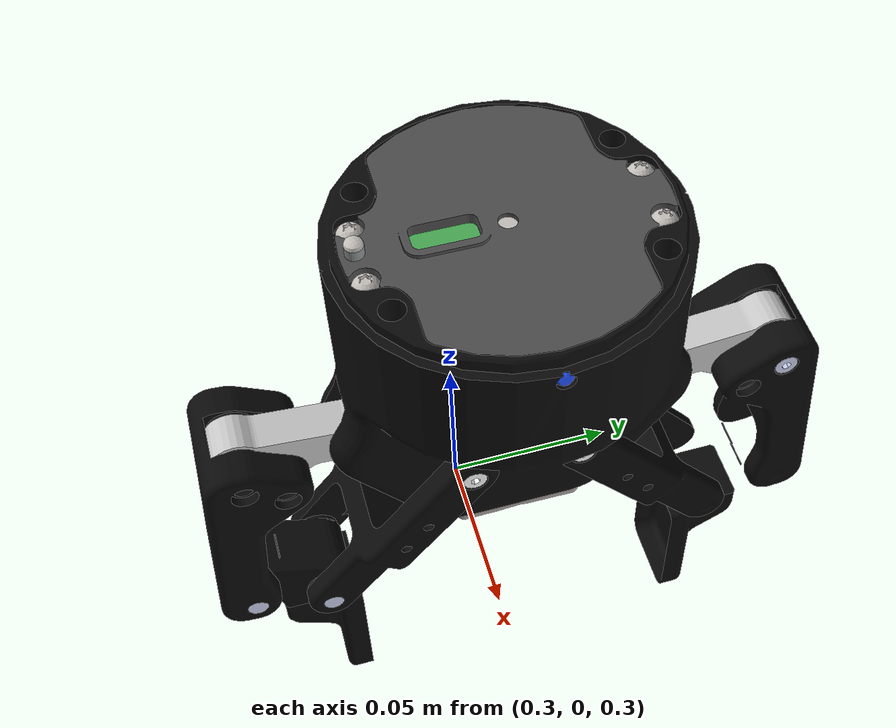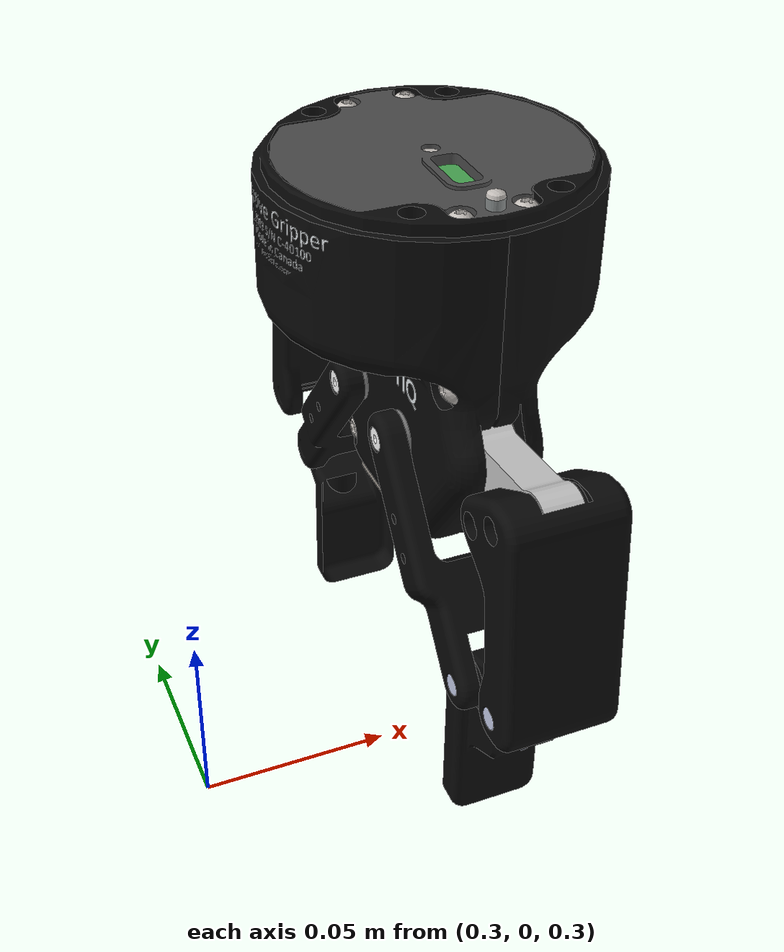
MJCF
<?xml version='1.0' encoding='utf-8'?>
<mujoco model="my_droid">
	<compiler angle="radian" coordinate="local" inertiafromgeom="true" />
	<option integrator="RK4" timestep="0.01" />
	<visual>
    <global offwidth="1280" offheight="720" />
	</visual>
	<custom />
	<asset>
		<mesh file="assets/MJCF/visuals/left_inner_knuckle_Defeatured_2F_85_PAD_OPEN_finger3step_01_Defeatured_2F_85_PAD_OPEN_finger3step.obj" name="left_inner_knuckle_Defeatured_2F_85_PAD_OPEN_finger3step_01_Defeatured_2F_85_PAD_OPEN_finger3step" scale="1.0 1.0 1.0" />
		<material name="Cod_Gray" rgba="0.03921568766236305 0.03921568766236305 0.03921568766236305 1.0" />
		<mesh file="assets/MJCF/visuals/left_inner_finger_Defeatured_2F_85_PAD_OPEN_finger4step_01_Defeatured_2F_85_PAD_OPEN_finger4step_0.obj" name="left_inner_finger_Defeatured_2F_85_PAD_OPEN_finger4step_01_Defeatured_2F_85_PAD_OPEN_finger4step_0" scale="1.0 1.0 1.0" />
		<mesh file="assets/MJCF/visuals/left_inner_finger_Defeatured_2F_85_PAD_OPEN_finger4step_01_Defeatured_2F_85_PAD_OPEN_finger4step_1.obj" name="left_inner_finger_Defeatured_2F_85_PAD_OPEN_finger4step_01_Defeatured_2F_85_PAD_OPEN_finger4step_1" scale="1.0 1.0 1.0" />
		<material name="Stack" rgba="0.529411792755127 0.5490196347236633 0.5490196347236633 1.0" />
		<mesh file="assets/MJCF/visuals/left_inner_finger_Defeatured_2F_85_PAD_OPEN_finger4step_01_Defeatured_2F_85_PAD_OPEN_finger4step_2.obj" name="left_inner_finger_Defeatured_2F_85_PAD_OPEN_finger4step_01_Defeatured_2F_85_PAD_OPEN_finger4step_2" scale="1.0 1.0 1.0" />
		<material name="Periwinkle_Gray" rgba="0.7921568751335144 0.8196078538894653 0.9333333373069763 1.0" />
		<mesh file="assets/MJCF/visuals/left_inner_finger_Defeatured_2F_85_PAD_OPEN_finger4step_01_Defeatured_2F_85_PAD_OPEN_finger4step_3.obj" name="left_inner_finger_Defeatured_2F_85_PAD_OPEN_finger4step_01_Defeatured_2F_85_PAD_OPEN_finger4step_3" scale="1.0 1.0 1.0" />
		<material name="Celeste" rgba="0.800000011920929 0.8078431487083435 0.800000011920929 1.0" />
		<mesh file="assets/MJCF/visuals/left_inner_finger_Defeatured_2F_85_PAD_OPEN_finger4step_01_Defeatured_2F_85_PAD_OPEN_finger4step_4.obj" name="left_inner_finger_Defeatured_2F_85_PAD_OPEN_finger4step_01_Defeatured_2F_85_PAD_OPEN_finger4step_4" scale="1.0 1.0 1.0" />
		<material name="Rangoon_Green" rgba="0.11764705926179886 0.11764705926179886 0.11764705926179886 1.0" />
		<mesh file="assets/MJCF/visuals/left_inner_finger_Defeatured_2F_85_PAD_OPEN_fingertipsstep_01_Defeatured_2F_85_PAD_OPEN_fingertipsstep_0.obj" name="left_inner_finger_Defeatured_2F_85_PAD_OPEN_fingertipsstep_01_Defeatured_2F_85_PAD_OPEN_fingertipsstep_0" scale="1.0 1.0 1.0" />
		<mesh file="assets/MJCF/visuals/left_inner_finger_Defeatured_2F_85_PAD_OPEN_fingertipsstep_01_Defeatured_2F_85_PAD_OPEN_fingertipsstep_1.obj" name="left_inner_finger_Defeatured_2F_85_PAD_OPEN_fingertipsstep_01_Defeatured_2F_85_PAD_OPEN_fingertipsstep_1" scale="1.0 1.0 1.0" />
		<mesh file="assets/MJCF/visuals/left_outer_finger_Defeatured_2F_85_PAD_OPEN_finger2step_01_Defeatured_2F_85_PAD_OPEN_finger2step_0.obj" name="left_outer_finger_Defeatured_2F_85_PAD_OPEN_finger2step_01_Defeatured_2F_85_PAD_OPEN_finger2step_0" scale="1.0 1.0 1.0" />
		<mesh file="assets/MJCF/visuals/left_outer_finger_Defeatured_2F_85_PAD_OPEN_finger2step_01_Defeatured_2F_85_PAD_OPEN_finger2step_1.obj" name="left_outer_finger_Defeatured_2F_85_PAD_OPEN_finger2step_01_Defeatured_2F_85_PAD_OPEN_finger2step_1" scale="1.0 1.0 1.0" />
		<mesh file="assets/MJCF/visuals/left_outer_knuckle_Defeatured_2F_85_PAD_OPEN_Finger1step_01_Defeatured_2F_85_PAD_OPEN_Finger1step.obj" name="left_outer_knuckle_Defeatured_2F_85_PAD_OPEN_Finger1step_01_Defeatured_2F_85_PAD_OPEN_Finger1step" scale="1.0 1.0 1.0" />
		<material name="Pumice" rgba="0.7843137383460999 0.7843137383460999 0.7843137383460999 1.0" />
		<mesh file="assets/MJCF/visuals/right_inner_knuckle_Defeatured_2F_85_PAD_OPEN_finger3step_01_Defeatured_2F_85_PAD_OPEN_finger3step.obj" name="right_inner_knuckle_Defeatured_2F_85_PAD_OPEN_finger3step_01_Defeatured_2F_85_PAD_OPEN_finger3step" scale="1.0 1.0 1.0" />
		<mesh file="assets/MJCF/visuals/right_inner_finger_Defeatured_2F_85_PAD_OPEN_finger4step_01_Defeatured_2F_85_PAD_OPEN_finger4step_0.obj" name="right_inner_finger_Defeatured_2F_85_PAD_OPEN_finger4step_01_Defeatured_2F_85_PAD_OPEN_finger4step_0" scale="1.0 1.0 1.0" />
		<mesh file="assets/MJCF/visuals/right_inner_finger_Defeatured_2F_85_PAD_OPEN_finger4step_01_Defeatured_2F_85_PAD_OPEN_finger4step_1.obj" name="right_inner_finger_Defeatured_2F_85_PAD_OPEN_finger4step_01_Defeatured_2F_85_PAD_OPEN_finger4step_1" scale="1.0 1.0 1.0" />
		<mesh file="assets/MJCF/visuals/right_inner_finger_Defeatured_2F_85_PAD_OPEN_finger4step_01_Defeatured_2F_85_PAD_OPEN_finger4step_2.obj" name="right_inner_finger_Defeatured_2F_85_PAD_OPEN_finger4step_01_Defeatured_2F_85_PAD_OPEN_finger4step_2" scale="1.0 1.0 1.0" />
		<mesh file="assets/MJCF/visuals/right_inner_finger_Defeatured_2F_85_PAD_OPEN_finger4step_01_Defeatured_2F_85_PAD_OPEN_finger4step_3.obj" name="right_inner_finger_Defeatured_2F_85_PAD_OPEN_finger4step_01_Defeatured_2F_85_PAD_OPEN_finger4step_3" scale="1.0 1.0 1.0" />
		<mesh file="assets/MJCF/visuals/right_inner_finger_Defeatured_2F_85_PAD_OPEN_finger4step_01_Defeatured_2F_85_PAD_OPEN_finger4step_4.obj" name="right_inner_finger_Defeatured_2F_85_PAD_OPEN_finger4step_01_Defeatured_2F_85_PAD_OPEN_finger4step_4" scale="1.0 1.0 1.0" />
		<mesh file="assets/MJCF/visuals/right_inner_finger_Defeatured_2F_85_PAD_OPEN_fingertipsstep_01_Defeatured_2F_85_PAD_OPEN_fingertipsstep_0.obj" name="right_inner_finger_Defeatured_2F_85_PAD_OPEN_fingertipsstep_01_Defeatured_2F_85_PAD_OPEN_fingertipsstep_0" scale="1.0 1.0 1.0" />
		<mesh file="assets/MJCF/visuals/right_inner_finger_Defeatured_2F_85_PAD_OPEN_fingertipsstep_01_Defeatured_2F_85_PAD_OPEN_fingertipsstep_1.obj" name="right_inner_finger_Defeatured_2F_85_PAD_OPEN_fingertipsstep_01_Defeatured_2F_85_PAD_OPEN_fingertipsstep_1" scale="1.0 1.0 1.0" />
		<mesh file="assets/MJCF/visuals/right_outer_finger_Defeatured_2F_85_PAD_OPEN_finger2step_01_Defeatured_2F_85_PAD_OPEN_finger2step_0.obj" name="right_outer_finger_Defeatured_2F_85_PAD_OPEN_finger2step_01_Defeatured_2F_85_PAD_OPEN_finger2step_0" scale="1.0 1.0 1.0" />
		<mesh file="assets/MJCF/visuals/right_outer_finger_Defeatured_2F_85_PAD_OPEN_finger2step_01_Defeatured_2F_85_PAD_OPEN_finger2step_1.obj" name="right_outer_finger_Defeatured_2F_85_PAD_OPEN_finger2step_01_Defeatured_2F_85_PAD_OPEN_finger2step_1" scale="1.0 1.0 1.0" />
		<mesh file="assets/MJCF/visuals/right_outer_knuckle_Defeatured_2F_85_PAD_OPEN_Finger1step_01_Defeatured_2F_85_PAD_OPEN_Finger1step.obj" name="right_outer_knuckle_Defeatured_2F_85_PAD_OPEN_Finger1step_01_Defeatured_2F_85_PAD_OPEN_Finger1step" scale="1.0 1.0 1.0" />
		<mesh file="assets/MJCF/visuals/Defeatured_2F_85_PAD_OPEN_basestep_0.obj" name="Defeatured_2F_85_PAD_OPEN_basestep_0" scale="1.0 1.0 1.0" />
		<mesh file="assets/MJCF/visuals/Defeatured_2F_85_PAD_OPEN_basestep_1.obj" name="Defeatured_2F_85_PAD_OPEN_basestep_1" scale="1.0 1.0 1.0" />
		<mesh file="assets/MJCF/visuals/Defeatured_2F_85_PAD_OPEN_basestep_2.obj" name="Defeatured_2F_85_PAD_OPEN_basestep_2" scale="1.0 1.0 1.0" inertia="shell" />
		<material name="Chateau_Green" rgba="0.2862745225429535 0.6627451181411743 0.3294117748737335 1.0" />
		<mesh file="assets/MJCF/visuals/Defeatured_2F_85_PAD_OPEN_basestep_3.obj" name="Defeatured_2F_85_PAD_OPEN_basestep_3" scale="1.0 1.0 1.0" />
		<material name="Gravel" rgba="0.2980392277240753 0.2980392277240753 0.2980392277240753 1.0" />
		<mesh file="assets/MJCF/visuals/Defeatured_2F_85_PAD_OPEN_basestep_4.obj" name="Defeatured_2F_85_PAD_OPEN_basestep_4" scale="1.0 1.0 1.0" />
		<material name="Silver_Rust" rgba="0.7764706015586853 0.7568627595901489 0.7372549176216125 1.0" />
		<mesh file="assets/MJCF/visuals/Defeatured_2F_85_PAD_OPEN_basestep_5.obj" name="Defeatured_2F_85_PAD_OPEN_basestep_5" scale="1.0 1.0 1.0" />
		<material name="Gallery" rgba="0.9372549057006836 0.9372549057006836 0.9372549057006836 1.0" />
		<mesh file="assets/MJCF/visuals/Defeatured_2F_85_PAD_OPEN_basestep_6.obj" name="Defeatured_2F_85_PAD_OPEN_basestep_6" scale="1.0 1.0 1.0" />
		<material name="Blue_Ribbon" rgba="0.13333334028720856 0.3333333432674408 1.0 1.0" />
		<mesh file="assets/MJCF/visuals/Defeatured_2F_85_PAD_OPEN_basestep_7.obj" name="Defeatured_2F_85_PAD_OPEN_basestep_7" scale="1.0 1.0 1.0" />
		<material name="Dawn" rgba="0.6470588445663452 0.6196078658103943 0.5882353186607361 1.0" />
		<mesh file="assets/MJCF/visuals/Defeatured_2F_85_PAD_OPEN_basestep_8.obj" name="Defeatured_2F_85_PAD_OPEN_basestep_8" scale="1.0 1.0 1.0" />
		<material name="White" />
		<mesh file="assets/MJCF/visuals/Defeatured_2F_85_PAD_OPEN_basestep_9.obj" name="Defeatured_2F_85_PAD_OPEN_basestep_9" scale="1.0 1.0 1.0" />
		<material name="Gray" rgba="0.4941176474094391 0.4941176474094391 0.4941176474094391 1.0" />
		<mesh file="assets/MJCF/visuals/Defeatured_2F_85_PAD_OPEN_basestep_10.obj" name="Defeatured_2F_85_PAD_OPEN_basestep_10" scale="1.0 1.0 1.0" />
		<material name="Mystic" rgba="0.8980392217636108 0.9176470637321472 0.929411768913269 1.0" />
	</asset>
	<worldbody>
		<light cutoff="100" diffuse="1 1 1" dir="0 0 -1.3" directional="true" exponent="1" pos="0 0 1.3" specular="0.1 0.1 0.1" />
		<body name="panda" pos="0.0 0.0 0.0" quat="1.0 0.0 0.0 0.0">
			<inertial pos="0 0 0" mass="1.0" diaginertia="0.01 0.01 0.01" />
			<body name="panda_rootJoint" pos="0.0 0.0 0.0" quat="1.0 0.0 0.0 0.0">
				<inertial pos="0 0 0" mass="1.0" diaginertia="0.01 0.01 0.01" />
				<body name="panda_joint1" pos="-2.38418573772492e-09 2.98023217215615e-10 2.384185648907078e-08" quat="1.0 0.0 0.0 0.0">
					<inertial pos="-0.041018 -0.000140 0.049974" mass="4.970684" diaginertia="0.703375 0.707198 0.009383" />
					<joint limited="true" name="panda_joint1" range="-2.897300087848498 2.897300087848498" />
					<body name="panda_joint2" pos="0.0 0.0 0.33299998044967793" quat="1.0 0.0 0.0 0.0">
						<inertial pos="0.003875 0.002081 0.000269" mass="0.646926" diaginertia="0.007902 0.008229 0.002507" />
						<joint limited="true" name="panda_joint2" range="-1.762799988219413 1.762799988219413" />
						<body name="panda_joint3" pos="0.0 0.0 0.0" quat="0.672500193119049 -0.67249961146559 -0.21850461235394478 -0.21850285401688627">
							<inertial pos="-0.025586 0.000090 0.032776" mass="3.228604" diaginertia="0.037265 0.036219 0.010830" />
							<joint limited="true" name="panda_joint3" range="-2.897300087848498 2.897300087848498" />
							<body name="panda_joint4" pos="-3.920239083354815e-08 -0.31599985459077806 2.6962435208294613e-08" quat="0.7071067992517078 0.7071067631204806 -7.426388948999596e-07 8.54542068821274e-07">
								<inertial pos="-0.005607 0.035791 -0.038990" mass="3.587895" diaginertia="0.025850 0.019258 0.028409" />
								<joint limited="true" name="panda_joint4" range="-3.0717999898504136 -0.06979999575475569" />
								<body name="panda_joint5" pos="0.08249996242579544 -8.731302823485866e-09 2.1096611679816135e-08" quat="-0.21850896713585316 -0.2185087745573751 -0.6724981768081529 0.672498289152">
									<inertial pos="-0.011503 -0.041172 -0.038168" mass="1.225946" diaginertia="0.035317 0.029537 0.008736" />
									<joint limited="true" name="panda_joint5" range="-2.897300087848498 2.897300087848498" />
									<body name="panda_joint6" pos="-0.08249985783177105 0.38399977610718367 8.343422613546606e-08" quat="0.707106786205162 -0.7071067729365561 -4.780045144306279e-05 -4.7801400879681615e-05">
										<inertial pos="0.060149 -0.014117 -0.010517" mass="1.666555" diaginertia="0.005327 0.005028 0.007576" />
										<joint limited="true" name="panda_joint6" range="-0.01749999978815516 3.752499969733032" />
										<body name="panda_joint7" pos="2.3442212911648506e-27 -1.3552527156068545e-20 2.7755575614410992e-17" quat="0.4156105890150162 0.41561072531778764 -0.5720732207804873 0.5720732412595905">
											<inertial pos="0.010517 -0.010517 0.006600" mass="0.735522" diaginertia="0.012152 0.012517 0.002122" />
											<joint limited="true" name="panda_joint7" range="-2.897300087848498 2.897300087848498" />
											<body name="panda_joint8" pos="0.08799988050339824 1.3340454185772899e-08 1.1411462324586087e-13" quat="0.7071067664539359 0.7071067955192248 -1.6816544499134172e-05 1.681654746117867e-05">
												<inertial pos="0 0 0" mass="0.09" diaginertia="0.001 0.001 0.001" />
												<body name="panda_hand_joint" pos="-8.132580386899235e-09 -2.2194249069866848e-12 0.10699996454294647" quat="1.0 0.0 -0.0 0.0">
													<inertial pos="-0.01 0 0.0584" mass="0.73" diaginertia="0.001 0.0025 0.0017" />
													<body name="finger_joint" pos="-0.2716920055132541 4.642562197343975e-05 -0.41789591168841905" quat="0.9999999976135248 6.50391522284152e-05 -2.3287437204612976e-05 -7.445934780687247e-07">
														<inertial pos="0 0 0" mass="0.01" diaginertia="1e-4 1e-4 1e-4" />
														<joint axis="0.0 0.0 -1.0" limited="true" name="finger_joint" pos="0.054662514477968216 0.030601143836975098 -6.744753952396543e-17" range="0.0 0.7853981633974483" />
														<body name="left_outer_finger_FixedJoint" pos="0.27171230316162115 -0.0011609359681586365 0.43536753717815985" quat="0.007608266547359123 0.7070823118556363 0.007609677035398684 0.7070493698154677">
															<inertial pos="0 0 0" mass="0.01" diaginertia="1e-4 1e-4 1e-4" />
															<body name="left_inner_finger_joint" pos="-0.4352543799344041 -0.01053053135559729 -0.27169201045959634" quat="-0.007608266547359223 0.7070823118556362 0.007609677035398685 0.7070493698154677">
																<inertial pos="0 0 0" mass="0.01" diaginertia="1e-4 1e-4 1e-4" />
																<joint axis="0.0 0.0 -1.0" limited="true" name="left_inner_finger_joint" pos="0.09808536618947983 0.06775850057601929 -0.013299999758601189" range="-3.141592653589793 3.141592653589793" />
																<body name="left_inner_finger_knuckle_joint" pos="0.0 -4.336808689942018e-19 5.551115123125783e-17" quat="1.0 0.0 0.0 0.0">
																	<inertial pos="0 0 0" mass="0.01" diaginertia="1e-4 1e-4 1e-4" />
																	<joint limited="true" name="left_inner_finger_knuckle_joint" pos="0.10460005700588226 0.049857065081596375 1.278322586673042e-10" range="-3.141592653589793 3.141592653589793" />
																	<geom class="visual" material="Cod_Gray" mesh="left_inner_knuckle_Defeatured_2F_85_PAD_OPEN_finger3step_01_Defeatured_2F_85_PAD_OPEN_finger3step" name="left_inner_knuckle_Defeatured_2F_85_PAD_OPEN_finger3step_01_Defeatured_2F_85_PAD_OPEN_finger3step" pos="0.27171231185788436 -0.0028300884394681577 0.43541520986967464" type="mesh" quat="0.5112626486602456 0.4884758267071234 0.5112873978209066 0.4884537517894901" />
																</body>
																<geom class="visual" material="Cod_Gray" mesh="left_inner_finger_Defeatured_2F_85_PAD_OPEN_finger4step_01_Defeatured_2F_85_PAD_OPEN_finger4step_0" name="left_inner_finger_Defeatured_2F_85_PAD_OPEN_finger4step_01_Defeatured_2F_85_PAD_OPEN_finger4step_0" pos="0.2717124231380446 0.002810867264725931 0.43804880505027993" type="mesh" quat="0.49793883673208733 0.5020520831651206 0.49796290135495797 0.5020294508667904" />
																<geom class="visual" material="Stack" mesh="left_inner_finger_Defeatured_2F_85_PAD_OPEN_finger4step_01_Defeatured_2F_85_PAD_OPEN_finger4step_1" name="left_inner_finger_Defeatured_2F_85_PAD_OPEN_finger4step_01_Defeatured_2F_85_PAD_OPEN_finger4step_1" pos="0.2717124231380446 0.002810867264725931 0.43804880505027993" type="mesh" quat="0.49793883673208733 0.5020520831651206 0.49796290135495797 0.5020294508667904" />
																<geom class="visual" material="Periwinkle_Gray" mesh="left_inner_finger_Defeatured_2F_85_PAD_OPEN_finger4step_01_Defeatured_2F_85_PAD_OPEN_finger4step_2" name="left_inner_finger_Defeatured_2F_85_PAD_OPEN_finger4step_01_Defeatured_2F_85_PAD_OPEN_finger4step_2" pos="0.2717124231380446 0.002810867264725931 0.43804880505027993" type="mesh" quat="0.49793883673208733 0.5020520831651206 0.49796290135495797 0.5020294508667904" />
																<geom class="visual" material="Celeste" mesh="left_inner_finger_Defeatured_2F_85_PAD_OPEN_finger4step_01_Defeatured_2F_85_PAD_OPEN_finger4step_3" name="left_inner_finger_Defeatured_2F_85_PAD_OPEN_finger4step_01_Defeatured_2F_85_PAD_OPEN_finger4step_3" pos="0.2717124231380446 0.002810867264725931 0.43804880505027993" type="mesh" quat="0.49793883673208733 0.5020520831651206 0.49796290135495797 0.5020294508667904" />
																<geom class="visual" material="Rangoon_Green" mesh="left_inner_finger_Defeatured_2F_85_PAD_OPEN_finger4step_01_Defeatured_2F_85_PAD_OPEN_finger4step_4" name="left_inner_finger_Defeatured_2F_85_PAD_OPEN_finger4step_01_Defeatured_2F_85_PAD_OPEN_finger4step_4" pos="0.2717124231380446 0.002810867264725931 0.43804880505027993" type="mesh" quat="0.49793883673208733 0.5020520831651206 0.49796290135495797 0.5020294508667904" />
																<geom class="visual" material="Cod_Gray" mesh="left_inner_finger_Defeatured_2F_85_PAD_OPEN_fingertipsstep_01_Defeatured_2F_85_PAD_OPEN_fingertipsstep_0" name="left_inner_finger_Defeatured_2F_85_PAD_OPEN_fingertipsstep_01_Defeatured_2F_85_PAD_OPEN_fingertipsstep_0" pos="0.2717124230102225 0.002810867264727962 0.4380488050502853" type="mesh" quat="0.49793883673209316 0.502052083165115 0.4979629013549637 0.5020294508667845" />
																<geom class="visual" material="Cod_Gray" mesh="left_inner_finger_Defeatured_2F_85_PAD_OPEN_fingertipsstep_01_Defeatured_2F_85_PAD_OPEN_fingertipsstep_1" name="left_inner_finger_Defeatured_2F_85_PAD_OPEN_fingertipsstep_01_Defeatured_2F_85_PAD_OPEN_fingertipsstep_1" pos="0.2717124230102225 0.002810867264727962 0.4380488050502853" type="mesh" quat="0.49793883673209316 0.502052083165115 0.4979629013549637 0.5020294508667845" />
															</body>
															<geom class="visual" material="Cod_Gray" mesh="left_outer_finger_Defeatured_2F_85_PAD_OPEN_finger2step_01_Defeatured_2F_85_PAD_OPEN_finger2step_0" name="left_outer_finger_Defeatured_2F_85_PAD_OPEN_finger2step_01_Defeatured_2F_85_PAD_OPEN_finger2step_0" pos="-0.0009739735990386134 0.0013519233481913738 1.2784212577443554e-10" type="mesh" quat="-0.6984065927571141 -1.4771140049350032e-16 -7.66935114173156e-16 0.7157012164258201" />
															<geom class="visual" material="Periwinkle_Gray" mesh="left_outer_finger_Defeatured_2F_85_PAD_OPEN_finger2step_01_Defeatured_2F_85_PAD_OPEN_finger2step_1" name="left_outer_finger_Defeatured_2F_85_PAD_OPEN_finger2step_01_Defeatured_2F_85_PAD_OPEN_finger2step_1" pos="-0.0009739735990386134 0.0013519233481913738 1.2784212577443554e-10" type="mesh" quat="-0.6984065927571141 -1.4771140049350032e-16 -7.66935114173156e-16 0.7157012164258201" />
														</body>
														<geom class="visual" material="Pumice" mesh="left_outer_knuckle_Defeatured_2F_85_PAD_OPEN_Finger1step_01_Defeatured_2F_85_PAD_OPEN_Finger1step" name="left_outer_knuckle_Defeatured_2F_85_PAD_OPEN_Finger1step_01_Defeatured_2F_85_PAD_OPEN_Finger1step" pos="0.2717122613259201 -0.002453076279864094 0.43451322314513807" type="mesh" quat="0.5109799986043415 0.48877154194332845 0.511004517397136 0.4887496332605974" />
													</body>
													<body name="right_outer_knuckle_joint" pos="-0.2716920055132541 4.642562197343975e-05 -0.41789591168841905" quat="0.9999999976135248 6.50391522284152e-05 -2.3287437204612976e-05 -7.445934780687247e-07">
														<inertial pos="0 0 0" mass="0.01" diaginertia="1e-4 1e-4 1e-4" />
														<joint limited="true" name="right_outer_knuckle_joint" pos="0.054662514477968216 -0.030601143836975098 -6.137398241990707e-17" range="0.0 0.7853981633974483" />
														<body name="right_outer_finger_FixedJoint" pos="0.27171227335929865 0.0015478827953358564 0.4351723319665203" quat="-0.009850393980755535 0.7070546285547631 -0.00984982028604949 0.7070217132578337">
															<inertial pos="0 0 0" mass="0.01" diaginertia="1e-4 1e-4 1e-4" />
															<body name="right_inner_finger_joint" pos="-0.4349729713292058 0.013670097603086476 -0.27169202525832414" quat="0.009850393980755436 0.7070546285547631 -0.00984982028604949 0.7070217132578338">
																<inertial pos="0 0 0" mass="0.01" diaginertia="1e-4 1e-4 1e-4" />
																<joint axis="0.0 0.0 -1.0" limited="true" name="right_inner_finger_joint" pos="0.09808536618947983 -0.06775850057601929 -0.013299999758601189" range="-3.141592653589793 3.141592653589793" />
																<body name="right_inner_finger_knuckle_joint" pos="-5.551115123125783e-17 2.168404344971009e-18 5.551115123125783e-17" quat="1.0 0.0 0.0 0.0">
																	<inertial pos="0 0 0" mass="0.01" diaginertia="1e-4 1e-4 1e-4" />
																	<joint axis="0.0 0.0 -1.0" limited="true" name="right_inner_finger_knuckle_joint" pos="0.10460005700588226 -0.049857065081596375 -1.3610652145096172e-16" range="-3.141592653589793 3.141592653589793" />
																	<geom class="visual" material="Cod_Gray" mesh="right_inner_knuckle_Defeatured_2F_85_PAD_OPEN_finger3step_01_Defeatured_2F_85_PAD_OPEN_finger3step" name="right_inner_knuckle_Defeatured_2F_85_PAD_OPEN_finger3step_01_Defeatured_2F_85_PAD_OPEN_finger3step" pos="0.27171233743470874 0.0032638616174486485 0.43535214575064407" type="mesh" quat="-0.4868488564708624 -0.5128136225278689 0.4868254538119786 0.512836579256608" />
																</body>
																<geom class="visual" material="Cod_Gray" mesh="right_inner_finger_Defeatured_2F_85_PAD_OPEN_finger4step_01_Defeatured_2F_85_PAD_OPEN_finger4step_0" name="right_inner_finger_Defeatured_2F_85_PAD_OPEN_finger4step_01_Defeatured_2F_85_PAD_OPEN_finger4step_0" pos="0.27171245623393303 -0.0031053579201242775 0.43830307361517523" type="mesh" quat="0.5021795230338875 0.49781193551003067 -0.5021552562173837 -0.4978344123927839" />
																<geom class="visual" material="Stack" mesh="right_inner_finger_Defeatured_2F_85_PAD_OPEN_finger4step_01_Defeatured_2F_85_PAD_OPEN_finger4step_1" name="right_inner_finger_Defeatured_2F_85_PAD_OPEN_finger4step_01_Defeatured_2F_85_PAD_OPEN_finger4step_1" pos="0.27171245623393303 -0.0031053579201242775 0.43830307361517523" type="mesh" quat="0.5021795230338875 0.49781193551003067 -0.5021552562173837 -0.4978344123927839" />
																<geom class="visual" material="Periwinkle_Gray" mesh="right_inner_finger_Defeatured_2F_85_PAD_OPEN_finger4step_01_Defeatured_2F_85_PAD_OPEN_finger4step_2" name="right_inner_finger_Defeatured_2F_85_PAD_OPEN_finger4step_01_Defeatured_2F_85_PAD_OPEN_finger4step_2" pos="0.27171245623393303 -0.0031053579201242775 0.43830307361517523" type="mesh" quat="0.5021795230338875 0.49781193551003067 -0.5021552562173837 -0.4978344123927839" />
																<geom class="visual" material="Celeste" mesh="right_inner_finger_Defeatured_2F_85_PAD_OPEN_finger4step_01_Defeatured_2F_85_PAD_OPEN_finger4step_3" name="right_inner_finger_Defeatured_2F_85_PAD_OPEN_finger4step_01_Defeatured_2F_85_PAD_OPEN_finger4step_3" pos="0.27171245623393303 -0.0031053579201242775 0.43830307361517523" type="mesh" quat="0.5021795230338875 0.49781193551003067 -0.5021552562173837 -0.4978344123927839" />
																<geom class="visual" material="Rangoon_Green" mesh="right_inner_finger_Defeatured_2F_85_PAD_OPEN_finger4step_01_Defeatured_2F_85_PAD_OPEN_finger4step_4" name="right_inner_finger_Defeatured_2F_85_PAD_OPEN_finger4step_01_Defeatured_2F_85_PAD_OPEN_finger4step_4" pos="0.27171245623393303 -0.0031053579201242775 0.43830307361517523" type="mesh" quat="0.5021795230338875 0.49781193551003067 -0.5021552562173837 -0.4978344123927839" />
																<geom class="visual" material="Cod_Gray" mesh="right_inner_finger_Defeatured_2F_85_PAD_OPEN_fingertipsstep_01_Defeatured_2F_85_PAD_OPEN_fingertipsstep_0" name="right_inner_finger_Defeatured_2F_85_PAD_OPEN_fingertipsstep_01_Defeatured_2F_85_PAD_OPEN_fingertipsstep_0" pos="0.2717124562339344 -0.003105360416360785 0.43830307363674953" type="mesh" quat="0.5021795230339131 0.49781193551000474 -0.5021552562174093 -0.497834412392758" />
																<geom class="visual" material="Cod_Gray" mesh="right_inner_finger_Defeatured_2F_85_PAD_OPEN_fingertipsstep_01_Defeatured_2F_85_PAD_OPEN_fingertipsstep_1" name="right_inner_finger_Defeatured_2F_85_PAD_OPEN_fingertipsstep_01_Defeatured_2F_85_PAD_OPEN_fingertipsstep_1" pos="0.2717124562339344 -0.003105360416360785 0.43830307363674953" type="mesh" quat="0.5021795230339131 0.49781193551000474 -0.5021552562174093 -0.497834412392758" />
															</body>
															<geom class="visual" material="Cod_Gray" mesh="right_outer_finger_Defeatured_2F_85_PAD_OPEN_finger2step_01_Defeatured_2F_85_PAD_OPEN_finger2step_0" name="right_outer_finger_Defeatured_2F_85_PAD_OPEN_finger2step_01_Defeatured_2F_85_PAD_OPEN_finger2step_0" pos="-0.0009739735990351717 -0.0013519233482872893 -9.825473767932635e-15" type="mesh" quat="-1.048990684667789e-15 0.6984065927571338 0.715701216425801 1.2470659221638923e-16" />
															<geom class="visual" material="Periwinkle_Gray" mesh="right_outer_finger_Defeatured_2F_85_PAD_OPEN_finger2step_01_Defeatured_2F_85_PAD_OPEN_finger2step_1" name="right_outer_finger_Defeatured_2F_85_PAD_OPEN_finger2step_01_Defeatured_2F_85_PAD_OPEN_finger2step_1" pos="-0.0009739735990351717 -0.0013519233482872893 -9.825473767932635e-15" type="mesh" quat="-1.048990684667789e-15 0.6984065927571338 0.715701216425801 1.2470659221638923e-16" />
														</body>
														<geom class="visual" material="Pumice" mesh="right_outer_knuckle_Defeatured_2F_85_PAD_OPEN_Finger1step_01_Defeatured_2F_85_PAD_OPEN_Finger1step" name="right_outer_knuckle_Defeatured_2F_85_PAD_OPEN_Finger1step_01_Defeatured_2F_85_PAD_OPEN_Finger1step" pos="0.2717122571596229 0.00284225371946147 0.4343297173122293" type="mesh" quat="-0.4871653817590331 -0.5125129099939078 0.4871418085857494 0.5125361121257286" />
													</body>
													<geom class="visual" material="Cod_Gray" mesh="Defeatured_2F_85_PAD_OPEN_basestep_0" name="Defeatured_2F_85_PAD_OPEN_basestep_0" pos="1.7860801420180328e-08 -1.3998232171016316e-09 0.017932022610253954" type="mesh" quat="0.5000000054726363 0.49999995045202306 0.4999999576036698 0.5000000864716593" />
													<geom class="visual" material="Stack" mesh="Defeatured_2F_85_PAD_OPEN_basestep_1" name="Defeatured_2F_85_PAD_OPEN_basestep_1" pos="1.7860801420180328e-08 -1.3998232171016316e-09 0.017932022610253954" type="mesh" quat="0.5000000054726363 0.49999995045202306 0.4999999576036698 0.5000000864716593" />
													<geom class="visual" material="Chateau_Green" mesh="Defeatured_2F_85_PAD_OPEN_basestep_2" name="Defeatured_2F_85_PAD_OPEN_basestep_2" pos="1.7860801420180328e-08 -1.3998232171016316e-09 0.017932022610253954" type="mesh" quat="0.5000000054726363 0.49999995045202306 0.4999999576036698 0.5000000864716593" />
													<geom class="visual" material="Gravel" mesh="Defeatured_2F_85_PAD_OPEN_basestep_3" name="Defeatured_2F_85_PAD_OPEN_basestep_3" pos="1.7860801420180328e-08 -1.3998232171016316e-09 0.017932022610253954" type="mesh" quat="0.5000000054726363 0.49999995045202306 0.4999999576036698 0.5000000864716593" />
													<geom class="visual" material="Silver_Rust" mesh="Defeatured_2F_85_PAD_OPEN_basestep_4" name="Defeatured_2F_85_PAD_OPEN_basestep_4" pos="1.7860801420180328e-08 -1.3998232171016316e-09 0.017932022610253954" type="mesh" quat="0.5000000054726363 0.49999995045202306 0.4999999576036698 0.5000000864716593" />
													<geom class="visual" material="Gallery" mesh="Defeatured_2F_85_PAD_OPEN_basestep_5" name="Defeatured_2F_85_PAD_OPEN_basestep_5" pos="1.7860801420180328e-08 -1.3998232171016316e-09 0.017932022610253954" type="mesh" quat="0.5000000054726363 0.49999995045202306 0.4999999576036698 0.5000000864716593" />
													<geom class="visual" material="Blue_Ribbon" mesh="Defeatured_2F_85_PAD_OPEN_basestep_6" name="Defeatured_2F_85_PAD_OPEN_basestep_6" pos="1.7860801420180328e-08 -1.3998232171016316e-09 0.017932022610253954" type="mesh" quat="0.5000000054726363 0.49999995045202306 0.4999999576036698 0.5000000864716593" />
													<geom class="visual" material="Dawn" mesh="Defeatured_2F_85_PAD_OPEN_basestep_7" name="Defeatured_2F_85_PAD_OPEN_basestep_7" pos="1.7860801420180328e-08 -1.3998232171016316e-09 0.017932022610253954" type="mesh" quat="0.5000000054726363 0.49999995045202306 0.4999999576036698 0.5000000864716593" />
													<geom class="visual" material="White" mesh="Defeatured_2F_85_PAD_OPEN_basestep_8" name="Defeatured_2F_85_PAD_OPEN_basestep_8" pos="1.7860801420180328e-08 -1.3998232171016316e-09 0.017932022610253954" type="mesh" quat="0.5000000054726363 0.49999995045202306 0.4999999576036698 0.5000000864716593" />
													<geom class="visual" material="Gray" mesh="Defeatured_2F_85_PAD_OPEN_basestep_9" name="Defeatured_2F_85_PAD_OPEN_basestep_9" pos="1.7860801420180328e-08 -1.3998232171016316e-09 0.017932022610253954" type="mesh" quat="0.5000000054726363 0.49999995045202306 0.4999999576036698 0.5000000864716593" />
													<geom class="visual" material="Mystic" mesh="Defeatured_2F_85_PAD_OPEN_basestep_10" name="Defeatured_2F_85_PAD_OPEN_basestep_10" pos="1.7860801420180328e-08 -1.3998232171016316e-09 0.017932022610253954" type="mesh" quat="0.5000000054726363 0.49999995045202306 0.4999999576036698 0.5000000864716593" />
												</body>
											</body>
										</body>
									</body>
								</body>
							</body>
						</body>
					</body>
				</body>
			</body>
		</body>
	</worldbody>
	<actuator>
		<!-- 7 arm joints -->
		<position name="actuator1" joint="panda_joint1" kp="4500" kv="450"/>
		<position name="actuator2" joint="panda_joint2" kp="4500" kv="450"/>
		<position name="actuator3" joint="panda_joint3" kp="3500" kv="350"/>
		<position name="actuator4" joint="panda_joint4" kp="3500" kv="350"/>
		<position name="actuator5" joint="panda_joint5" kp="2000" kv="200"/>
		<position name="actuator6" joint="panda_joint6" kp="2000" kv="200"/>
		<position name="actuator7" joint="panda_joint7" kp="2000" kv="200"/>
		<!-- gripper: one actuator drives finger_joint (ctrl[7] in your env) -->
		<position name="actuator8" joint="finger_joint"  kp="200"  kv="20"/>
	</actuator>
	<equality>
    	<joint joint1="finger_joint" joint2="right_outer_knuckle_joint" polycoef="0 1 0 0 0"/>
	</equality>
	<default>
		<default class="visual">
			<geom conaffinity="0" contype="0" group="1" type="mesh" />
		</default>
		<default class="collision">
			<geom group="0" />
		</default>
	</default>
</mujoco>
